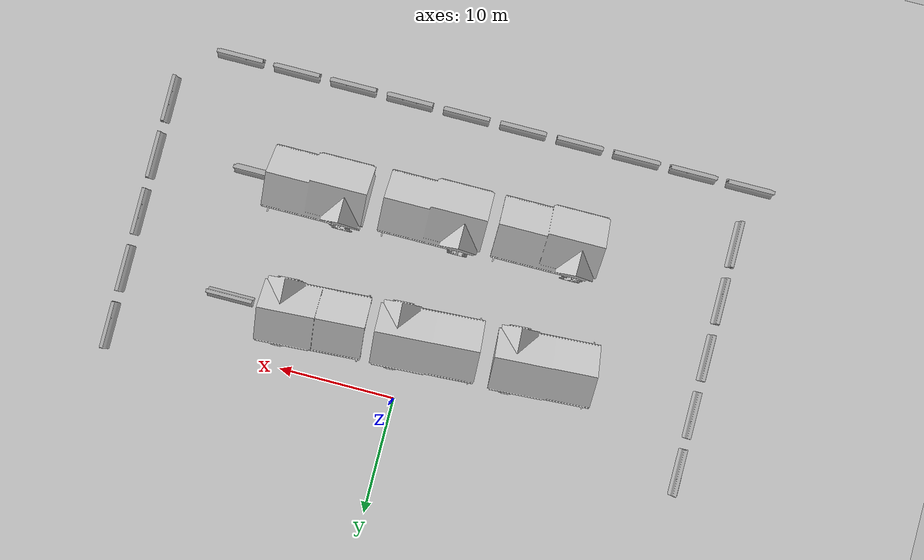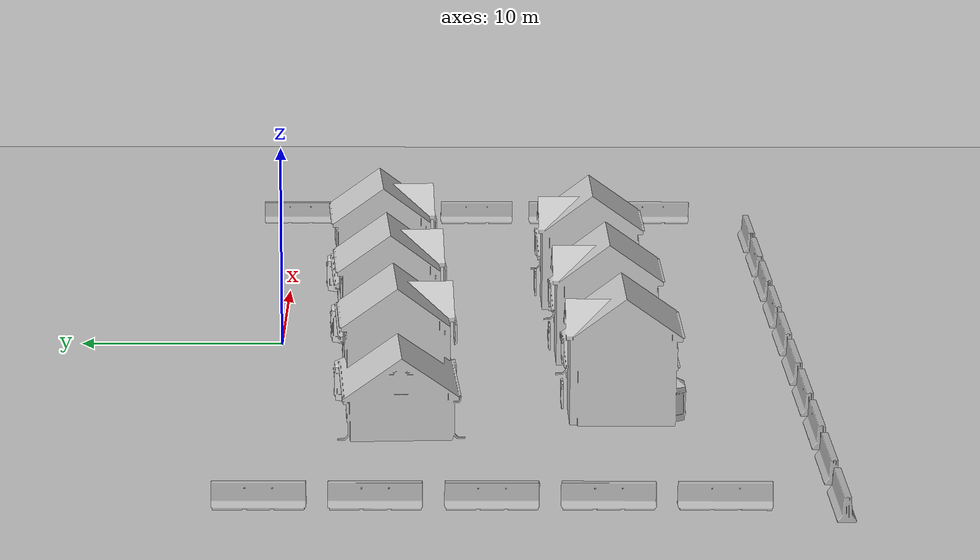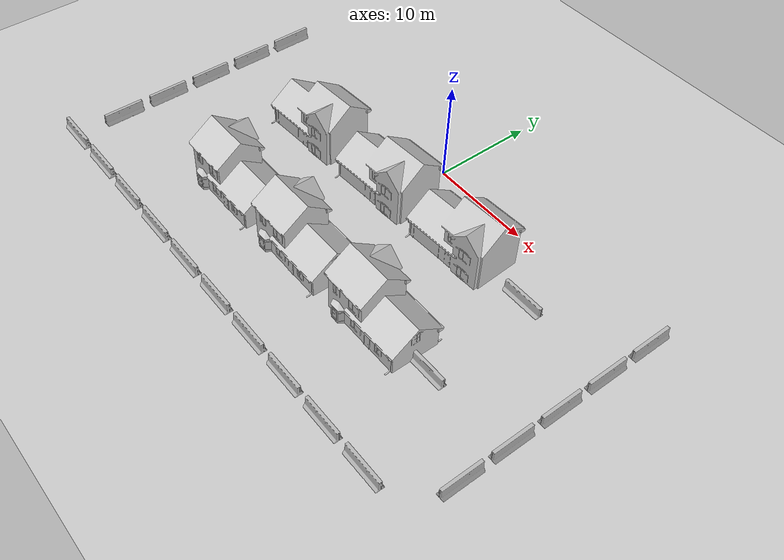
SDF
<sdf version="1.6">
 <world name="default">
  <model name="ground_plane">
   <static>1</static>
   <link name="link">
    <collision name="collision">
     <geometry><plane><normal>0 0 1</normal><size>100 100</size></plane></geometry>
     <surface><friction><ode><mu>100</mu><mu2>50</mu2></ode></friction></surface>
    </collision>
    <visual name="visual">
     <cast_shadows>0</cast_shadows>
     <geometry><plane><normal>0 0 1</normal><size>100 100</size></plane></geometry>
     <material>
      <script><uri>file://media/materials/scripts/gazebo.material</uri><name>Gazebo/Grey</name></script>
     </material>
    </visual>
   </link>
  </model>
  <model name="b1">
   <static>1</static>
   <link name="link">
    <visual name="visual">
     <geometry>
      <mesh><uri>model://jersey_barrier/meshes/jersey_barrier.dae</uri><scale>1 1 1</scale></mesh>
     </geometry>
    </visual>
    <collision name="upright">
     <pose>0 0 0.5715 0 -0 0</pose>
     <geometry><box><size>4.06542 0.3063 1.143</size></box></geometry>
    </collision>
    <collision name="base">
     <pose>0 0 0.032258 0 -0 0</pose>
     <geometry><box><size>4.06542 0.8107 0.064516</size></box></geometry>
    </collision>
    <collision name="base2">
     <pose>0 0 0.1 0 -0 0</pose>
     <geometry><box><size>4.06542 0.65 0.1</size></box></geometry>
    </collision>
    <collision name="base3">
     <pose>0 0 0.2 0 -0 0</pose>
     <geometry><box><size>4.06542 0.5 0.1</size></box></geometry>
    </collision>
    <collision name="left-angle">
     <pose>0 -0.224 0.2401 0.9 -0 0</pose>
     <geometry><box><size>4.06542 0.5 0.064516</size></box></geometry>
    </collision>
    <collision name="right-angle">
     <pose>0 0.224 0.2401 -0.9 0 0</pose>
     <geometry><box><size>4.06542 0.5 0.064516</size></box></geometry>
    </collision>
   </link>
   <pose>-25 -25 0 0 -0 0</pose>
  </model>
  <model name="b2">
   <static>1</static>
   <link name="link">
    <visual name="visual">
     <geometry>
      <mesh><uri>model://jersey_barrier/meshes/jersey_barrier.dae</uri><scale>1 1 1</scale></mesh>
     </geometry>
    </visual>
    <collision name="upright">
     <pose>0 0 0.5715 0 -0 0</pose>
     <geometry><box><size>4.06542 0.3063 1.143</size></box></geometry>
    </collision>
    <collision name="base">
     <pose>0 0 0.032258 0 -0 0</pose>
     <geometry><box><size>4.06542 0.8107 0.064516</size></box></geometry>
    </collision>
    <collision name="base2">
     <pose>0 0 0.1 0 -0 0</pose>
     <geometry><box><size>4.06542 0.65 0.1</size></box></geometry>
    </collision>
    <collision name="base3">
     <pose>0 0 0.2 0 -0 0</pose>
     <geometry><box><size>4.06542 0.5 0.1</size></box></geometry>
    </collision>
    <collision name="left-angle">
     <pose>0 -0.224 0.2401 0.9 -0 0</pose>
     <geometry><box><size>4.06542 0.5 0.064516</size></box></geometry>
    </collision>
    <collision name="right-angle">
     <pose>0 0.224 0.2401 -0.9 0 0</pose>
     <geometry><box><size>4.06542 0.5 0.064516</size></box></geometry>
    </collision>
   </link>
   <pose>-20 -25 0 0 -0 0</pose>
  </model>
  <model name="b3">
   <static>1</static>
   <link name="link">
    <visual name="visual">
     <geometry>
      <mesh><uri>model://jersey_barrier/meshes/jersey_barrier.dae</uri><scale>1 1 1</scale></mesh>
     </geometry>
    </visual>
    <collision name="upright">
     <pose>0 0 0.5715 0 -0 0</pose>
     <geometry><box><size>4.06542 0.3063 1.143</size></box></geometry>
    </collision>
    <collision name="base">
     <pose>0 0 0.032258 0 -0 0</pose>
     <geometry><box><size>4.06542 0.8107 0.064516</size></box></geometry>
    </collision>
    <collision name="base2">
     <pose>0 0 0.1 0 -0 0</pose>
     <geometry><box><size>4.06542 0.65 0.1</size></box></geometry>
    </collision>
    <collision name="base3">
     <pose>0 0 0.2 0 -0 0</pose>
     <geometry><box><size>4.06542 0.5 0.1</size></box></geometry>
    </collision>
    <collision name="left-angle">
     <pose>0 -0.224 0.2401 0.9 -0 0</pose>
     <geometry><box><size>4.06542 0.5 0.064516</size></box></geometry>
    </collision>
    <collision name="right-angle">
     <pose>0 0.224 0.2401 -0.9 0 0</pose>
     <geometry><box><size>4.06542 0.5 0.064516</size></box></geometry>
    </collision>
   </link>
   <pose>-15 -25 0 0 -0 0</pose>
  </model>
  <model name="b4">
   <static>1</static>
   <link name="link">
    <visual name="visual">
     <geometry>
      <mesh><uri>model://jersey_barrier/meshes/jersey_barrier.dae</uri><scale>1 1 1</scale></mesh>
     </geometry>
    </visual>
    <collision name="upright">
     <pose>0 0 0.5715 0 -0 0</pose>
     <geometry><box><size>4.06542 0.3063 1.143</size></box></geometry>
    </collision>
    <collision name="base">
     <pose>0 0 0.032258 0 -0 0</pose>
     <geometry><box><size>4.06542 0.8107 0.064516</size></box></geometry>
    </collision>
    <collision name="base2">
     <pose>0 0 0.1 0 -0 0</pose>
     <geometry><box><size>4.06542 0.65 0.1</size></box></geometry>
    </collision>
    <collision name="base3">
     <pose>0 0 0.2 0 -0 0</pose>
     <geometry><box><size>4.06542 0.5 0.1</size></box></geometry>
    </collision>
    <collision name="left-angle">
     <pose>0 -0.224 0.2401 0.9 -0 0</pose>
     <geometry><box><size>4.06542 0.5 0.064516</size></box></geometry>
    </collision>
    <collision name="right-angle">
     <pose>0 0.224 0.2401 -0.9 0 0</pose>
     <geometry><box><size>4.06542 0.5 0.064516</size></box></geometry>
    </collision>
   </link>
   <pose>-10 -25 0 0 -0 0</pose>
  </model>
  <model name="b5">
   <static>1</static>
   <link name="link">
    <visual name="visual">
     <geometry>
      <mesh><uri>model://jersey_barrier/meshes/jersey_barrier.dae</uri><scale>1 1 1</scale></mesh>
     </geometry>
    </visual>
    <collision name="upright">
     <pose>0 0 0.5715 0 -0 0</pose>
     <geometry><box><size>4.06542 0.3063 1.143</size></box></geometry>
    </collision>
    <collision name="base">
     <pose>0 0 0.032258 0 -0 0</pose>
     <geometry><box><size>4.06542 0.8107 0.064516</size></box></geometry>
    </collision>
    <collision name="base2">
     <pose>0 0 0.1 0 -0 0</pose>
     <geometry><box><size>4.06542 0.65 0.1</size></box></geometry>
    </collision>
    <collision name="base3">
     <pose>0 0 0.2 0 -0 0</pose>
     <geometry><box><size>4.06542 0.5 0.1</size></box></geometry>
    </collision>
    <collision name="left-angle">
     <pose>0 -0.224 0.2401 0.9 -0 0</pose>
     <geometry><box><size>4.06542 0.5 0.064516</size></box></geometry>
    </collision>
    <collision name="right-angle">
     <pose>0 0.224 0.2401 -0.9 0 0</pose>
     <geometry><box><size>4.06542 0.5 0.064516</size></box></geometry>
    </collision>
   </link>
   <pose>-5 -25 0 0 -0 0</pose>
  </model>
  <model name="b6">
   <static>1</static>
   <link name="link">
    <visual name="visual">
     <geometry>
      <mesh><uri>model://jersey_barrier/meshes/jersey_barrier.dae</uri><scale>1 1 1</scale></mesh>
     </geometry>
    </visual>
    <collision name="upright">
     <pose>0 0 0.5715 0 -0 0</pose>
     <geometry><box><size>4.06542 0.3063 1.143</size></box></geometry>
    </collision>
    <collision name="base">
     <pose>0 0 0.032258 0 -0 0</pose>
     <geometry><box><size>4.06542 0.8107 0.064516</size></box></geometry>
    </collision>
    <collision name="base2">
     <pose>0 0 0.1 0 -0 0</pose>
     <geometry><box><size>4.06542 0.65 0.1</size></box></geometry>
    </collision>
    <collision name="base3">
     <pose>0 0 0.2 0 -0 0</pose>
     <geometry><box><size>4.06542 0.5 0.1</size></box></geometry>
    </collision>
    <collision name="left-angle">
     <pose>0 -0.224 0.2401 0.9 -0 0</pose>
     <geometry><box><size>4.06542 0.5 0.064516</size></box></geometry>
    </collision>
    <collision name="right-angle">
     <pose>0 0.224 0.2401 -0.9 0 0</pose>
     <geometry><box><size>4.06542 0.5 0.064516</size></box></geometry>
    </collision>
   </link>
   <pose>0 -25 0 0 -0 0</pose>
  </model>
  <model name="b7">
   <static>1</static>
   <link name="link">
    <visual name="visual">
     <geometry>
      <mesh><uri>model://jersey_barrier/meshes/jersey_barrier.dae</uri><scale>1 1 1</scale></mesh>
     </geometry>
    </visual>
    <collision name="upright">
     <pose>0 0 0.5715 0 -0 0</pose>
     <geometry><box><size>4.06542 0.3063 1.143</size></box></geometry>
    </collision>
    <collision name="base">
     <pose>0 0 0.032258 0 -0 0</pose>
     <geometry><box><size>4.06542 0.8107 0.064516</size></box></geometry>
    </collision>
    <collision name="base2">
     <pose>0 0 0.1 0 -0 0</pose>
     <geometry><box><size>4.06542 0.65 0.1</size></box></geometry>
    </collision>
    <collision name="base3">
     <pose>0 0 0.2 0 -0 0</pose>
     <geometry><box><size>4.06542 0.5 0.1</size></box></geometry>
    </collision>
    <collision name="left-angle">
     <pose>0 -0.224 0.2401 0.9 -0 0</pose>
     <geometry><box><size>4.06542 0.5 0.064516</size></box></geometry>
    </collision>
    <collision name="right-angle">
     <pose>0 0.224 0.2401 -0.9 0 0</pose>
     <geometry><box><size>4.06542 0.5 0.064516</size></box></geometry>
    </collision>
   </link>
   <pose>5 -25 0 0 -0 0</pose>
  </model>
  <model name="b8">
   <static>1</static>
   <link name="link">
    <visual name="visual">
     <geometry>
      <mesh><uri>model://jersey_barrier/meshes/jersey_barrier.dae</uri><scale>1 1 1</scale></mesh>
     </geometry>
    </visual>
    <collision name="upright">
     <pose>0 0 0.5715 0 -0 0</pose>
     <geometry><box><size>4.06542 0.3063 1.143</size></box></geometry>
    </collision>
    <collision name="base">
     <pose>0 0 0.032258 0 -0 0</pose>
     <geometry><box><size>4.06542 0.8107 0.064516</size></box></geometry>
    </collision>
    <collision name="base2">
     <pose>0 0 0.1 0 -0 0</pose>
     <geometry><box><size>4.06542 0.65 0.1</size></box></geometry>
    </collision>
    <collision name="base3">
     <pose>0 0 0.2 0 -0 0</pose>
     <geometry><box><size>4.06542 0.5 0.1</size></box></geometry>
    </collision>
    <collision name="left-angle">
     <pose>0 -0.224 0.2401 0.9 -0 0</pose>
     <geometry><box><size>4.06542 0.5 0.064516</size></box></geometry>
    </collision>
    <collision name="right-angle">
     <pose>0 0.224 0.2401 -0.9 0 0</pose>
     <geometry><box><size>4.06542 0.5 0.064516</size></box></geometry>
    </collision>
   </link>
   <pose>10 -25 0 0 -0 0</pose>
  </model>
  <model name="b9">
   <static>1</static>
   <link name="link">
    <visual name="visual">
     <geometry>
      <mesh><uri>model://jersey_barrier/meshes/jersey_barrier.dae</uri><scale>1 1 1</scale></mesh>
     </geometry>
    </visual>
    <collision name="upright">
     <pose>0 0 0.5715 0 -0 0</pose>
     <geometry><box><size>4.06542 0.3063 1.143</size></box></geometry>
    </collision>
    <collision name="base">
     <pose>0 0 0.032258 0 -0 0</pose>
     <geometry><box><size>4.06542 0.8107 0.064516</size></box></geometry>
    </collision>
    <collision name="base2">
     <pose>0 0 0.1 0 -0 0</pose>
     <geometry><box><size>4.06542 0.65 0.1</size></box></geometry>
    </collision>
    <collision name="base3">
     <pose>0 0 0.2 0 -0 0</pose>
     <geometry><box><size>4.06542 0.5 0.1</size></box></geometry>
    </collision>
    <collision name="left-angle">
     <pose>0 -0.224 0.2401 0.9 -0 0</pose>
     <geometry><box><size>4.06542 0.5 0.064516</size></box></geometry>
    </collision>
    <collision name="right-angle">
     <pose>0 0.224 0.2401 -0.9 0 0</pose>
     <geometry><box><size>4.06542 0.5 0.064516</size></box></geometry>
    </collision>
   </link>
   <pose>15 -25 0 0 -0 0</pose>
  </model>
  <model name="b10">
   <static>1</static>
   <link name="link">
    <visual name="visual">
     <geometry>
      <mesh><uri>model://jersey_barrier/meshes/jersey_barrier.dae</uri><scale>1 1 1</scale></mesh>
     </geometry>
    </visual>
    <collision name="upright">
     <pose>0 0 0.5715 0 -0 0</pose>
     <geometry><box><size>4.06542 0.3063 1.143</size></box></geometry>
    </collision>
    <collision name="base">
     <pose>0 0 0.032258 0 -0 0</pose>
     <geometry><box><size>4.06542 0.8107 0.064516</size></box></geometry>
    </collision>
    <collision name="base2">
     <pose>0 0 0.1 0 -0 0</pose>
     <geometry><box><size>4.06542 0.65 0.1</size></box></geometry>
    </collision>
    <collision name="base3">
     <pose>0 0 0.2 0 -0 0</pose>
     <geometry><box><size>4.06542 0.5 0.1</size></box></geometry>
    </collision>
    <collision name="left-angle">
     <pose>0 -0.224 0.2401 0.9 -0 0</pose>
     <geometry><box><size>4.06542 0.5 0.064516</size></box></geometry>
    </collision>
    <collision name="right-angle">
     <pose>0 0.224 0.2401 -0.9 0 0</pose>
     <geometry><box><size>4.06542 0.5 0.064516</size></box></geometry>
    </collision>
   </link>
   <pose>20 -25 0 0 -0 0</pose>
  </model>
  <model name="b21">
   <static>1</static>
   <link name="link">
    <visual name="visual">
     <geometry>
      <mesh><uri>model://jersey_barrier/meshes/jersey_barrier.dae</uri><scale>1 1 1</scale></mesh>
     </geometry>
    </visual>
    <collision name="upright">
     <pose>0 0 0.5715 0 -0 0</pose>
     <geometry><box><size>4.06542 0.3063 1.143</size></box></geometry>
    </collision>
    <collision name="base">
     <pose>0 0 0.032258 0 -0 0</pose>
     <geometry><box><size>4.06542 0.8107 0.064516</size></box></geometry>
    </collision>
    <collision name="base2">
     <pose>0 0 0.1 0 -0 0</pose>
     <geometry><box><size>4.06542 0.65 0.1</size></box></geometry>
    </collision>
    <collision name="base3">
     <pose>0 0 0.2 0 -0 0</pose>
     <geometry><box><size>4.06542 0.5 0.1</size></box></geometry>
    </collision>
    <collision name="left-angle">
     <pose>0 -0.224 0.2401 0.9 -0 0</pose>
     <geometry><box><size>4.06542 0.5 0.064516</size></box></geometry>
    </collision>
    <collision name="right-angle">
     <pose>0 0.224 0.2401 -0.9 0 0</pose>
     <geometry><box><size>4.06542 0.5 0.064516</size></box></geometry>
    </collision>
   </link>
   <pose>-25 -20 0 0 0 -1.5708</pose>
  </model>
  <model name="b22">
   <static>1</static>
   <link name="link">
    <visual name="visual">
     <geometry>
      <mesh><uri>model://jersey_barrier/meshes/jersey_barrier.dae</uri><scale>1 1 1</scale></mesh>
     </geometry>
    </visual>
    <collision name="upright">
     <pose>0 0 0.5715 0 -0 0</pose>
     <geometry><box><size>4.06542 0.3063 1.143</size></box></geometry>
    </collision>
    <collision name="base">
     <pose>0 0 0.032258 0 -0 0</pose>
     <geometry><box><size>4.06542 0.8107 0.064516</size></box></geometry>
    </collision>
    <collision name="base2">
     <pose>0 0 0.1 0 -0 0</pose>
     <geometry><box><size>4.06542 0.65 0.1</size></box></geometry>
    </collision>
    <collision name="base3">
     <pose>0 0 0.2 0 -0 0</pose>
     <geometry><box><size>4.06542 0.5 0.1</size></box></geometry>
    </collision>
    <collision name="left-angle">
     <pose>0 -0.224 0.2401 0.9 -0 0</pose>
     <geometry><box><size>4.06542 0.5 0.064516</size></box></geometry>
    </collision>
    <collision name="right-angle">
     <pose>0 0.224 0.2401 -0.9 0 0</pose>
     <geometry><box><size>4.06542 0.5 0.064516</size></box></geometry>
    </collision>
   </link>
   <pose>-25 -15 0 0 0 -1.5708</pose>
  </model>
  <model name="b23">
   <static>1</static>
   <link name="link">
    <visual name="visual">
     <geometry>
      <mesh><uri>model://jersey_barrier/meshes/jersey_barrier.dae</uri><scale>1 1 1</scale></mesh>
     </geometry>
    </visual>
    <collision name="upright">
     <pose>0 0 0.5715 0 -0 0</pose>
     <geometry><box><size>4.06542 0.3063 1.143</size></box></geometry>
    </collision>
    <collision name="base">
     <pose>0 0 0.032258 0 -0 0</pose>
     <geometry><box><size>4.06542 0.8107 0.064516</size></box></geometry>
    </collision>
    <collision name="base2">
     <pose>0 0 0.1 0 -0 0</pose>
     <geometry><box><size>4.06542 0.65 0.1</size></box></geometry>
    </collision>
    <collision name="base3">
     <pose>0 0 0.2 0 -0 0</pose>
     <geometry><box><size>4.06542 0.5 0.1</size></box></geometry>
    </collision>
    <collision name="left-angle">
     <pose>0 -0.224 0.2401 0.9 -0 0</pose>
     <geometry><box><size>4.06542 0.5 0.064516</size></box></geometry>
    </collision>
    <collision name="right-angle">
     <pose>0 0.224 0.2401 -0.9 0 0</pose>
     <geometry><box><size>4.06542 0.5 0.064516</size></box></geometry>
    </collision>
   </link>
   <pose>-25 -10 0 0 0 -1.5708</pose>
  </model>
  <model name="b24">
   <static>1</static>
   <link name="link">
    <visual name="visual">
     <geometry>
      <mesh><uri>model://jersey_barrier/meshes/jersey_barrier.dae</uri><scale>1 1 1</scale></mesh>
     </geometry>
    </visual>
    <collision name="upright">
     <pose>0 0 0.5715 0 -0 0</pose>
     <geometry><box><size>4.06542 0.3063 1.143</size></box></geometry>
    </collision>
    <collision name="base">
     <pose>0 0 0.032258 0 -0 0</pose>
     <geometry><box><size>4.06542 0.8107 0.064516</size></box></geometry>
    </collision>
    <collision name="base2">
     <pose>0 0 0.1 0 -0 0</pose>
     <geometry><box><size>4.06542 0.65 0.1</size></box></geometry>
    </collision>
    <collision name="base3">
     <pose>0 0 0.2 0 -0 0</pose>
     <geometry><box><size>4.06542 0.5 0.1</size></box></geometry>
    </collision>
    <collision name="left-angle">
     <pose>0 -0.224 0.2401 0.9 -0 0</pose>
     <geometry><box><size>4.06542 0.5 0.064516</size></box></geometry>
    </collision>
    <collision name="right-angle">
     <pose>0 0.224 0.2401 -0.9 0 0</pose>
     <geometry><box><size>4.06542 0.5 0.064516</size></box></geometry>
    </collision>
   </link>
   <pose>-25 -5 0 0 0 -1.5708</pose>
  </model>
  <model name="b25">
   <static>1</static>
   <link name="link">
    <visual name="visual">
     <geometry>
      <mesh><uri>model://jersey_barrier/meshes/jersey_barrier.dae</uri><scale>1 1 1</scale></mesh>
     </geometry>
    </visual>
    <collision name="upright">
     <pose>0 0 0.5715 0 -0 0</pose>
     <geometry><box><size>4.06542 0.3063 1.143</size></box></geometry>
    </collision>
    <collision name="base">
     <pose>0 0 0.032258 0 -0 0</pose>
     <geometry><box><size>4.06542 0.8107 0.064516</size></box></geometry>
    </collision>
    <collision name="base2">
     <pose>0 0 0.1 0 -0 0</pose>
     <geometry><box><size>4.06542 0.65 0.1</size></box></geometry>
    </collision>
    <collision name="base3">
     <pose>0 0 0.2 0 -0 0</pose>
     <geometry><box><size>4.06542 0.5 0.1</size></box></geometry>
    </collision>
    <collision name="left-angle">
     <pose>0 -0.224 0.2401 0.9 -0 0</pose>
     <geometry><box><size>4.06542 0.5 0.064516</size></box></geometry>
    </collision>
    <collision name="right-angle">
     <pose>0 0.224 0.2401 -0.9 0 0</pose>
     <geometry><box><size>4.06542 0.5 0.064516</size></box></geometry>
    </collision>
   </link>
   <pose>-25 0 0 0 0 -1.5708</pose>
  </model>
  <model name="b31">
   <static>1</static>
   <link name="link">
    <visual name="visual">
     <geometry>
      <mesh><uri>model://jersey_barrier/meshes/jersey_barrier.dae</uri><scale>1 1 1</scale></mesh>
     </geometry>
    </visual>
    <collision name="upright">
     <pose>0 0 0.5715 0 -0 0</pose>
     <geometry><box><size>4.06542 0.3063 1.143</size></box></geometry>
    </collision>
    <collision name="base">
     <pose>0 0 0.032258 0 -0 0</pose>
     <geometry><box><size>4.06542 0.8107 0.064516</size></box></geometry>
    </collision>
    <collision name="base2">
     <pose>0 0 0.1 0 -0 0</pose>
     <geometry><box><size>4.06542 0.65 0.1</size></box></geometry>
    </collision>
    <collision name="base3">
     <pose>0 0 0.2 0 -0 0</pose>
     <geometry><box><size>4.06542 0.5 0.1</size></box></geometry>
    </collision>
    <collision name="left-angle">
     <pose>0 -0.224 0.2401 0.9 -0 0</pose>
     <geometry><box><size>4.06542 0.5 0.064516</size></box></geometry>
    </collision>
    <collision name="right-angle">
     <pose>0 0.224 0.2401 -0.9 0 0</pose>
     <geometry><box><size>4.06542 0.5 0.064516</size></box></geometry>
    </collision>
   </link>
   <pose>25 -20 0 0 0 -1.5708</pose>
  </model>
  <model name="b32">
   <static>1</static>
   <link name="link">
    <visual name="visual">
     <geometry>
      <mesh><uri>model://jersey_barrier/meshes/jersey_barrier.dae</uri><scale>1 1 1</scale></mesh>
     </geometry>
    </visual>
    <collision name="upright">
     <pose>0 0 0.5715 0 -0 0</pose>
     <geometry><box><size>4.06542 0.3063 1.143</size></box></geometry>
    </collision>
    <collision name="base">
     <pose>0 0 0.032258 0 -0 0</pose>
     <geometry><box><size>4.06542 0.8107 0.064516</size></box></geometry>
    </collision>
    <collision name="base2">
     <pose>0 0 0.1 0 -0 0</pose>
     <geometry><box><size>4.06542 0.65 0.1</size></box></geometry>
    </collision>
    <collision name="base3">
     <pose>0 0 0.2 0 -0 0</pose>
     <geometry><box><size>4.06542 0.5 0.1</size></box></geometry>
    </collision>
    <collision name="left-angle">
     <pose>0 -0.224 0.2401 0.9 -0 0</pose>
     <geometry><box><size>4.06542 0.5 0.064516</size></box></geometry>
    </collision>
    <collision name="right-angle">
     <pose>0 0.224 0.2401 -0.9 0 0</pose>
     <geometry><box><size>4.06542 0.5 0.064516</size></box></geometry>
    </collision>
   </link>
   <pose>25 -15 0 0 0 -1.5708</pose>
  </model>
  <model name="b33">
   <static>1</static>
   <link name="link">
    <visual name="visual">
     <geometry>
      <mesh><uri>model://jersey_barrier/meshes/jersey_barrier.dae</uri><scale>1 1 1</scale></mesh>
     </geometry>
    </visual>
    <collision name="upright">
     <pose>0 0 0.5715 0 -0 0</pose>
     <geometry><box><size>4.06542 0.3063 1.143</size></box></geometry>
    </collision>
    <collision name="base">
     <pose>0 0 0.032258 0 -0 0</pose>
     <geometry><box><size>4.06542 0.8107 0.064516</size></box></geometry>
    </collision>
    <collision name="base2">
     <pose>0 0 0.1 0 -0 0</pose>
     <geometry><box><size>4.06542 0.65 0.1</size></box></geometry>
    </collision>
    <collision name="base3">
     <pose>0 0 0.2 0 -0 0</pose>
     <geometry><box><size>4.06542 0.5 0.1</size></box></geometry>
    </collision>
    <collision name="left-angle">
     <pose>0 -0.224 0.2401 0.9 -0 0</pose>
     <geometry><box><size>4.06542 0.5 0.064516</size></box></geometry>
    </collision>
    <collision name="right-angle">
     <pose>0 0.224 0.2401 -0.9 0 0</pose>
     <geometry><box><size>4.06542 0.5 0.064516</size></box></geometry>
    </collision>
   </link>
   <pose>25 -10 0 0 0 -1.5708</pose>
  </model>
  <model name="b34">
   <static>1</static>
   <link name="link">
    <visual name="visual">
     <geometry>
      <mesh><uri>model://jersey_barrier/meshes/jersey_barrier.dae</uri><scale>1 1 1</scale></mesh>
     </geometry>
    </visual>
    <collision name="upright">
     <pose>0 0 0.5715 0 -0 0</pose>
     <geometry><box><size>4.06542 0.3063 1.143</size></box></geometry>
    </collision>
    <collision name="base">
     <pose>0 0 0.032258 0 -0 0</pose>
     <geometry><box><size>4.06542 0.8107 0.064516</size></box></geometry>
    </collision>
    <collision name="base2">
     <pose>0 0 0.1 0 -0 0</pose>
     <geometry><box><size>4.06542 0.65 0.1</size></box></geometry>
    </collision>
    <collision name="base3">
     <pose>0 0 0.2 0 -0 0</pose>
     <geometry><box><size>4.06542 0.5 0.1</size></box></geometry>
    </collision>
    <collision name="left-angle">
     <pose>0 -0.224 0.2401 0.9 -0 0</pose>
     <geometry><box><size>4.06542 0.5 0.064516</size></box></geometry>
    </collision>
    <collision name="right-angle">
     <pose>0 0.224 0.2401 -0.9 0 0</pose>
     <geometry><box><size>4.06542 0.5 0.064516</size></box></geometry>
    </collision>
   </link>
   <pose>25 -5 0 0 0 -1.5708</pose>
  </model>
  <model name="b35">
   <static>1</static>
   <link name="link">
    <visual name="visual">
     <geometry>
      <mesh><uri>model://jersey_barrier/meshes/jersey_barrier.dae</uri><scale>1 1 1</scale></mesh>
     </geometry>
    </visual>
    <collision name="upright">
     <pose>0 0 0.5715 0 -0 0</pose>
     <geometry><box><size>4.06542 0.3063 1.143</size></box></geometry>
    </collision>
    <collision name="base">
     <pose>0 0 0.032258 0 -0 0</pose>
     <geometry><box><size>4.06542 0.8107 0.064516</size></box></geometry>
    </collision>
    <collision name="base2">
     <pose>0 0 0.1 0 -0 0</pose>
     <geometry><box><size>4.06542 0.65 0.1</size></box></geometry>
    </collision>
    <collision name="base3">
     <pose>0 0 0.2 0 -0 0</pose>
     <geometry><box><size>4.06542 0.5 0.1</size></box></geometry>
    </collision>
    <collision name="left-angle">
     <pose>0 -0.224 0.2401 0.9 -0 0</pose>
     <geometry><box><size>4.06542 0.5 0.064516</size></box></geometry>
    </collision>
    <collision name="right-angle">
     <pose>0 0.224 0.2401 -0.9 0 0</pose>
     <geometry><box><size>4.06542 0.5 0.064516</size></box></geometry>
    </collision>
   </link>
   <pose>25 0 0 0 0 -1.5708</pose>
  </model>
  <model name="House 3">
   <static>1</static>
   <link name="link">
    <collision name="collision">
     <geometry><mesh><uri>model://house_3/meshes/house_3.dae</uri><scale>1 1 1</scale></mesh></geometry>
    </collision>
    <visual name="visual">
     <geometry><mesh><uri>model://house_3/meshes/house_3.dae</uri><scale>1 1 1</scale></mesh></geometry>
     <material>
      <script>
       <uri>model://house_3/materials/scripts</uri>
       <uri>model://house_3/materials/textures</uri>
       <name>House_3/Diffuse</name>
      </script>
     </material>
    </visual>
   </link>
   <pose>-8.9888 -16.3153 0 0 -0 0</pose>
  </model>
  <model name="House 3_0">
   <static>1</static>
   <link name="link">
    <collision name="collision">
     <geometry><mesh><uri>model://house_3/meshes/house_3.dae</uri><scale>1 1 1</scale></mesh></geometry>
    </collision>
    <visual name="visual">
     <geometry><mesh><uri>model://house_3/meshes/house_3.dae</uri><scale>1 1 1</scale></mesh></geometry>
     <material>
      <script>
       <uri>model://house_3/materials/scripts</uri>
       <uri>model://house_3/materials/textures</uri>
       <name>House_3/Diffuse</name>
      </script>
     </material>
    </visual>
   </link>
   <pose>0.782261 -16.0455 0 0 -0 0</pose>
  </model>
  <model name="House 3_0_clone">
   <static>1</static>
   <link name="link">
    <collision name="collision">
     <geometry><mesh><uri>model://house_3/meshes/house_3.dae</uri><scale>1 1 1</scale></mesh></geometry>
    </collision>
    <visual name="visual">
     <geometry><mesh><uri>model://house_3/meshes/house_3.dae</uri><scale>1 1 1</scale></mesh></geometry>
     <material>
      <script>
       <uri>model://house_3/materials/scripts</uri>
       <uri>model://house_3/materials/textures</uri>
       <name>House_3/Diffuse</name>
      </script>
     </material>
    </visual>
   </link>
   <pose>10.7878 -15.6639 0 0 -0 0</pose>
  </model>
  <model name="House 3_clone">
   <static>1</static>
   <link name="link">
    <collision name="collision">
     <geometry><mesh><uri>model://house_3/meshes/house_3.dae</uri><scale>1 1 1</scale></mesh></geometry>
    </collision>
    <visual name="visual">
     <geometry><mesh><uri>model://house_3/meshes/house_3.dae</uri><scale>1 1 1</scale></mesh></geometry>
     <material>
      <script>
       <uri>model://house_3/materials/scripts</uri>
       <uri>model://house_3/materials/textures</uri>
       <name>House_3/Diffuse</name>
      </script>
     </material>
    </visual>
   </link>
   <pose>-11.8903 -5.84626 0 0 0 -3.08651</pose>
  </model>
  <model name="House 3_clone_clone">
   <static>1</static>
   <link name="link">
    <collision name="collision">
     <geometry><mesh><uri>model://house_3/meshes/house_3.dae</uri><scale>1 1 1</scale></mesh></geometry>
    </collision>
    <visual name="visual">
     <geometry><mesh><uri>model://house_3/meshes/house_3.dae</uri><scale>1 1 1</scale></mesh></geometry>
     <material>
      <script>
       <uri>model://house_3/materials/scripts</uri>
       <uri>model://house_3/materials/textures</uri>
       <name>House_3/Diffuse</name>
      </script>
     </material>
    </visual>
   </link>
   <pose>-2 -5.42012 0 0 0 -3.08651</pose>
  </model>
  <model name="House 3_clone_clone_0">
   <static>1</static>
   <link name="link">
    <collision name="collision">
     <geometry><mesh><uri>model://house_3/meshes/house_3.dae</uri><scale>1 1 1</scale></mesh></geometry>
    </collision>
    <visual name="visual">
     <geometry><mesh><uri>model://house_3/meshes/house_3.dae</uri><scale>1 1 1</scale></mesh></geometry>
     <material>
      <script>
       <uri>model://house_3/materials/scripts</uri>
       <uri>model://house_3/materials/textures</uri>
       <name>House_3/Diffuse</name>
      </script>
     </material>
    </visual>
   </link>
   <pose>7.6997 -4.9476 0 0 0 -3.08651</pose>
  </model>
  <model name="b10_clone">
   <static>1</static>
   <link name="link">
    <visual name="visual">
     <geometry>
      <mesh><uri>model://jersey_barrier/meshes/jersey_barrier.dae</uri><scale>1 1 1</scale></mesh>
     </geometry>
    </visual>
    <collision name="upright">
     <pose>0 0 0.5715 0 -0 0</pose>
     <geometry><box><size>4.06542 0.3063 1.143</size></box></geometry>
    </collision>
    <collision name="base">
     <pose>0 0 0.032258 0 -0 0</pose>
     <geometry><box><size>4.06542 0.8107 0.064516</size></box></geometry>
    </collision>
    <collision name="base2">
     <pose>0 0 0.1 0 -0 0</pose>
     <geometry><box><size>4.06542 0.65 0.1</size></box></geometry>
    </collision>
    <collision name="base3">
     <pose>0 0 0.2 0 -0 0</pose>
     <geometry><box><size>4.06542 0.5 0.1</size></box></geometry>
    </collision>
    <collision name="left-angle">
     <pose>0 -0.224 0.2401 0.9 -0 0</pose>
     <geometry><box><size>4.06542 0.5 0.064516</size></box></geometry>
    </collision>
    <collision name="right-angle">
     <pose>0 0.224 0.2401 -0.9 0 0</pose>
     <geometry><box><size>4.06542 0.5 0.064516</size></box></geometry>
    </collision>
   </link>
   <pose>16.0848 -15.747 0 0 -0 0</pose>
  </model>
  <model name="b10_clone_0">
   <static>1</static>
   <link name="link">
    <visual name="visual">
     <geometry>
      <mesh><uri>model://jersey_barrier/meshes/jersey_barrier.dae</uri><scale>1 1 1</scale></mesh>
     </geometry>
    </visual>
    <collision name="upright">
     <pose>0 0 0.5715 0 -0 0</pose>
     <geometry><box><size>4.06542 0.3063 1.143</size></box></geometry>
    </collision>
    <collision name="base">
     <pose>0 0 0.032258 0 -0 0</pose>
     <geometry><box><size>4.06542 0.8107 0.064516</size></box></geometry>
    </collision>
    <collision name="base2">
     <pose>0 0 0.1 0 -0 0</pose>
     <geometry><box><size>4.06542 0.65 0.1</size></box></geometry>
    </collision>
    <collision name="base3">
     <pose>0 0 0.2 0 -0 0</pose>
     <geometry><box><size>4.06542 0.5 0.1</size></box></geometry>
    </collision>
    <collision name="left-angle">
     <pose>0 -0.224 0.2401 0.9 -0 0</pose>
     <geometry><box><size>4.06542 0.5 0.064516</size></box></geometry>
    </collision>
    <collision name="right-angle">
     <pose>0 0.224 0.2401 -0.9 0 0</pose>
     <geometry><box><size>4.06542 0.5 0.064516</size></box></geometry>
    </collision>
   </link>
   <pose>15.6217 -4.91472 0 0 -0 0</pose>
  </model>
 </world>
</sdf>
